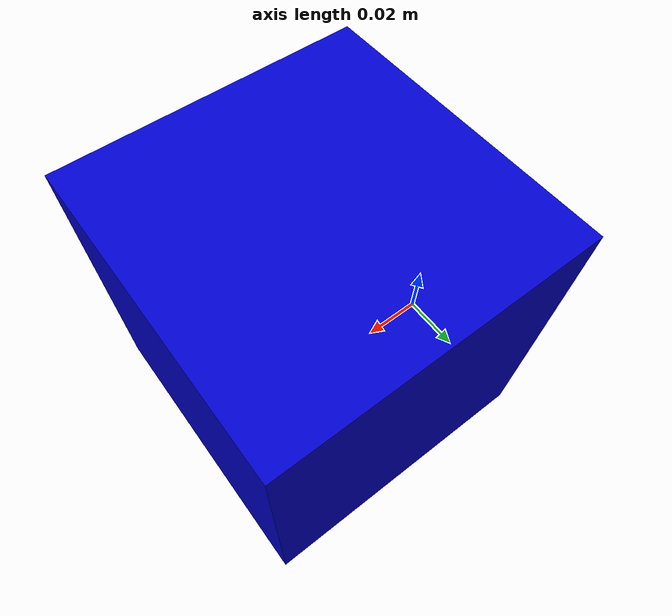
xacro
<?xml version="1.0"?>
<robot xmlns:xacro="http://www.ros.org/wiki/xacro" name="simple_ring">
	<xacro:include filename="$(find cepheus_description)/urdf/simple_ring.gazebo" />
	<link name="world"></link>

	<joint name="p1_joint" type="prismatic">
		<parent link="world"/>
		<child link="p1"/>
		<origin rpy="0 0 0" xyz="0 0 0.045"/>
		<axis xyz="1 0 0"/>
		<limit lower="-100" upper="100" effort="1000" velocity="10000"/>
		<dynamics damping="0" friction="0"/>
	</joint>
	<link name="p1">
		<inertial>
			<origin
				xyz="0.0 0.0 0.0"
				rpy="0.0 0.0 0.0" />
			<mass value="0.001" />
			<inertia
				ixx="1e-2"
				ixy="0.000001"
				ixz="0.000001"
				iyy="1e-2"
				iyz="0.000001"
				izz="1e-2" />
		</inertial>
	</link>
	<gazebo reference="p1">
		<mu1>0</mu1>
		<mu2>0</mu2>
	</gazebo>
	<joint name="p2_joint" type="prismatic">
		<parent link="p1"/>
		<child link="p2"/>
		<axis xyz="0 1 0"/>
		<limit
			lower="-100"
			upper="100"
			effort="1000"
			velocity="10000"/>
		<dynamics
			damping="0"
			friction="0"/>
	</joint>
	<link name="p2">
		<inertial>
			<origin
				xyz="0.0 0.0 0.0"
				rpy="0.0 0.0 0.0" />
			<mass value="0.001" />
			<inertia
				ixx="1e-2"
				ixy="0.000001"
				ixz="0.000001"
				iyy="1e-2"
				iyz="0.000001"
				izz="1e-2" />
		</inertial>
	</link>
	<gazebo reference="p2">
		<mu1>0</mu1>
		<mu2>0</mu2>
	</gazebo>
	<joint name="r_joint" type="continuous">
		<axis xyz="0 0 1"/>
		<parent link="p2"/>
		<origin rpy="0 0 0" xyz="0 0 0"/>
		<child link="base_link"/>
		<dynamics damping="0.0" friction="0.0"/>
	</joint>
  <link name="base_link">
	<visual>
    	<geometry>
        	<box size="0.09 0.09 0.09"/>
      	</geometry>
      	<origin xyz="0.045 0 0" rpy="0 0 0" />
      	<material name="blue">
       		<color rgba="0 0 .8 1"/>
      	</material>
    </visual>
    <collision>
      <geometry>
        <box size="0.09 0.09 0.09"/>
      </geometry>
	  <origin xyz="0.045 0 0" rpy="0 0 0" />
    </collision>
    <inertial>
      <mass value="20.0"/>
      <inertia ixx="0.027" ixy="0" ixz="0" iyy="0.027" iyz="0" izz="0.027"/>
	  <origin xyz="0.045 0 0" rpy="0 0 0" />
    </inertial>
  </link>
  <gazebo reference="base_link">
	<mu1>0</mu1>
    <mu2>0</mu2>
	<kp>1000000</kp>
	<kd>0</kd>
  </gazebo>

</robot>
